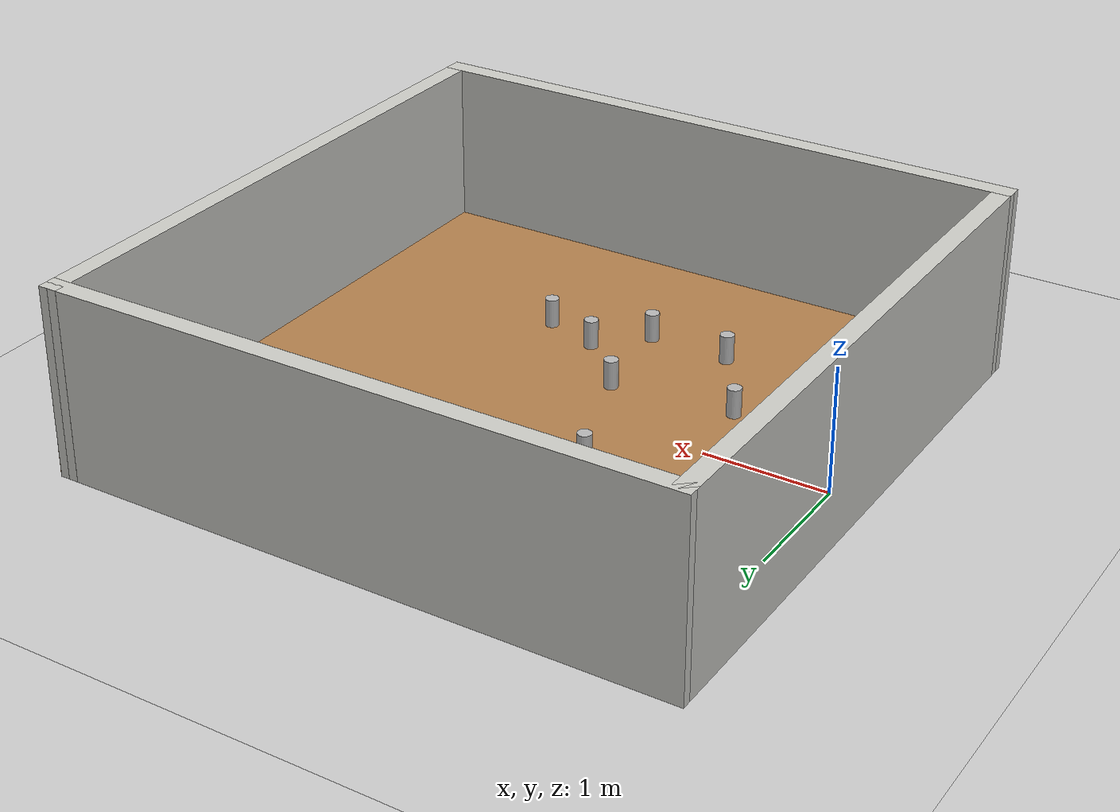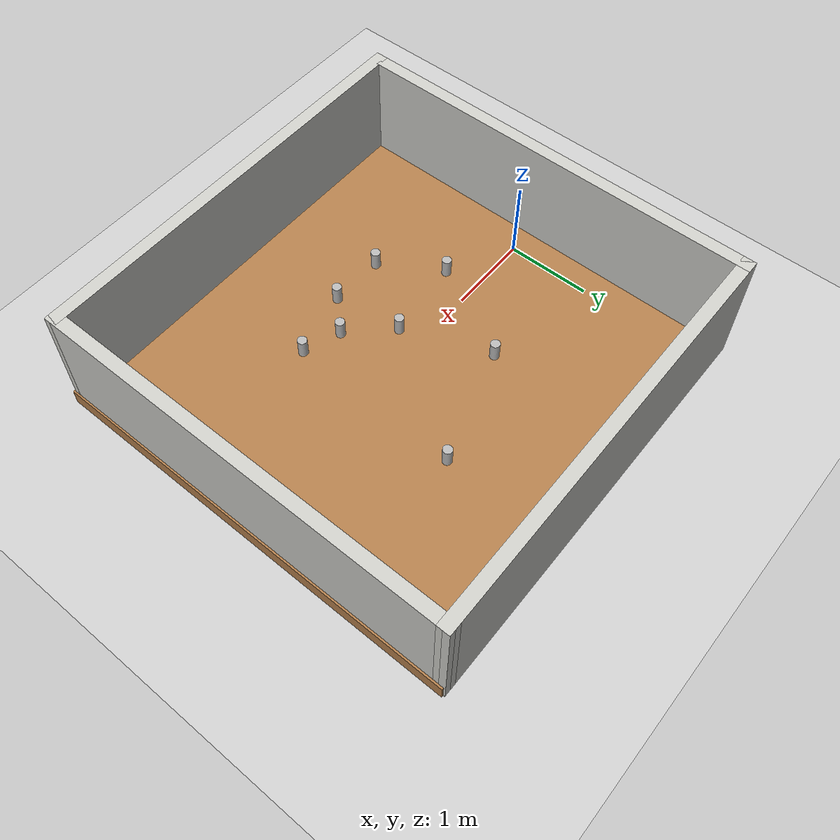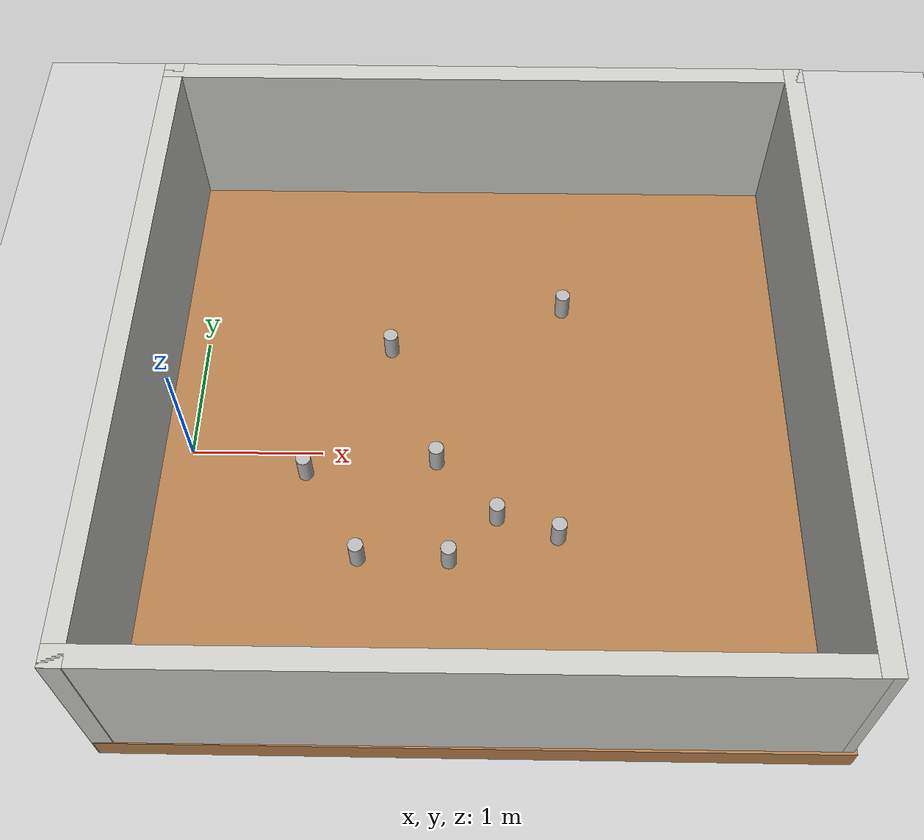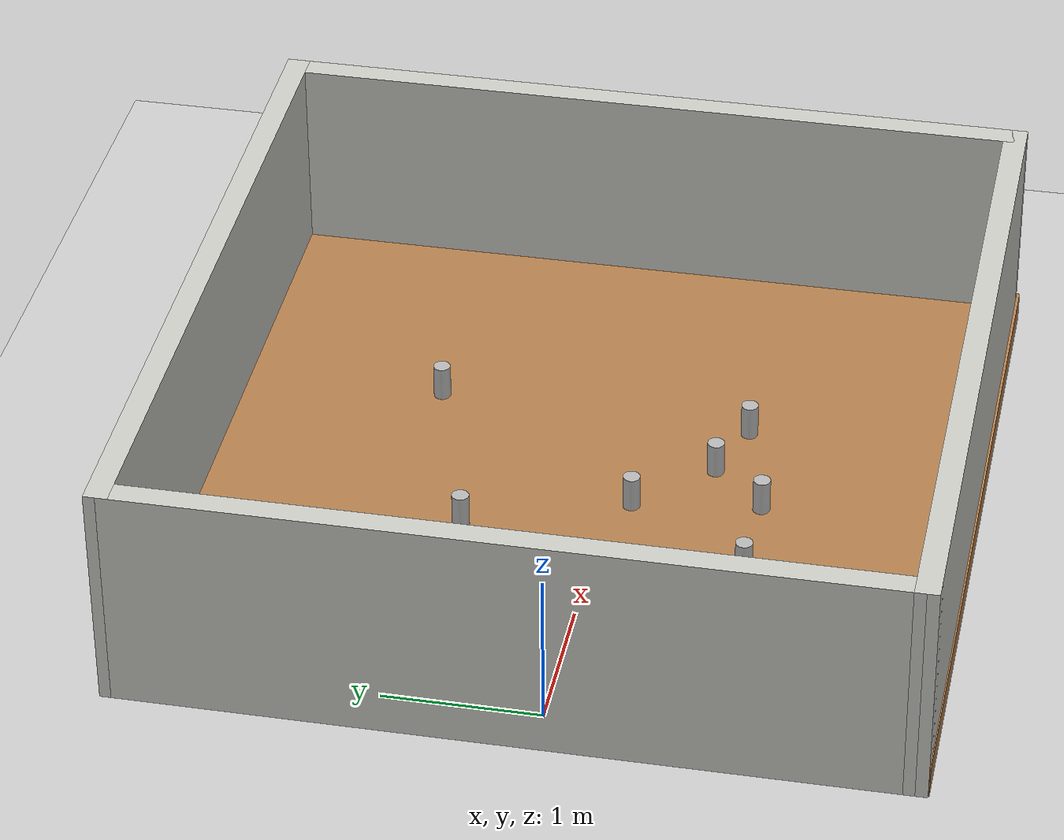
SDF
<sdf version="1.6">
 <world name="default">
  <light name="sun" type="directional">
   <pose>0 0 10 0 -0 0</pose>
   <diffuse>0.8 0.8 0.8 1</diffuse>
   <specular>0.1 0.1 0.1 1</specular>
   <attenuation>
    <range>1000</range>
    <constant>0.9</constant>
    <linear>0.01</linear>
    <quadratic>0.001</quadratic>
   </attenuation>
   <direction>-0.5 0.5 -1</direction>
  </light>
  <model name="ground_plane">
   <static>1</static>
   <link name="link">
    <collision name="collision">
     <geometry><plane><normal>0 0 1</normal><size>100 100</size></plane></geometry>
     <surface><friction><ode><mu>100</mu><mu2>50</mu2></ode></friction></surface>
    </collision>
    <visual name="visual">
     <cast_shadows>0</cast_shadows>
     <geometry><plane><normal>0 0 1</normal><size>100 100</size></plane></geometry>
     <material>
      <script><uri>file://media/materials/scripts/gazebo.material</uri><name>Gazebo/Grey</name></script>
     </material>
    </visual>
   </link>
  </model>
  <gravity>0 0 -9.8</gravity>
  <magnetic_field>6e-06 2.3e-05 -4.2e-05</magnetic_field>
  <atmosphere type="adiabatic"/>
  <physics name="default_physics" default="0" type="ode">
   <max_step_size>0.001</max_step_size>
   <real_time_factor>1</real_time_factor>
   <real_time_update_rate>1000</real_time_update_rate>
  </physics>
  <scene><ambient>0.4 0.4 0.4 1</ambient><background>0.7 0.7 0.7 1</background><shadows>1</shadows></scene>
  <spherical_coordinates>
   <surface_model>EARTH_WGS84</surface_model>
   <latitude_deg>0</latitude_deg>
   <longitude_deg>0</longitude_deg>
   <elevation>0</elevation>
   <heading_deg>0</heading_deg>
  </spherical_coordinates>
  <model name="room_5x5">
   <pose>2.19816 0.161722 0 0 -0 0</pose>
   <link name="Wall_0">
    <collision name="Wall_0_Collision">
     <geometry><box><size>4.99962 0.15 1.5</size></box></geometry>
     <pose>0 0 0.75 0 -0 0</pose>
    </collision>
    <visual name="Wall_0_Visual">
     <pose>0 0 0.75 0 -0 0</pose>
     <geometry><box><size>4.99962 0.15 1.5</size></box></geometry>
     <material>
      <script><uri>file://media/materials/scripts/gazebo.material</uri><name>Gazebo/CeilingTiled</name></script>
      <ambient>1 1 1 1</ambient>
     </material>
    </visual>
    <pose>-2.43578 -0.004075 0 0 0 -1.57059</pose>
   </link>
   <link name="Wall_1">
    <collision name="Wall_1_Collision">
     <geometry><box><size>5 0.15 1.5</size></box></geometry>
     <pose>0 0 0.75 0 -0 0</pose>
    </collision>
    <visual name="Wall_1_Visual">
     <pose>0 0 0.75 0 -0 0</pose>
     <geometry><box><size>5 0.15 1.5</size></box></geometry>
     <material>
      <script><uri>file://media/materials/scripts/gazebo.material</uri><name>Gazebo/CeilingTiled</name></script>
      <ambient>1 1 1 1</ambient>
     </material>
    </visual>
    <pose>-0.010283 -2.42207 0 0 -0 0.002887</pose>
   </link>
   <link name="Wall_2">
    <collision name="Wall_2_Collision">
     <geometry><box><size>5 0.15 1.5</size></box></geometry>
     <pose>0 0 0.75 0 -0 0</pose>
    </collision>
    <visual name="Wall_2_Visual">
     <pose>0 0 0.75 0 -0 0</pose>
     <geometry><box><size>5 0.15 1.5</size></box></geometry>
     <material>
      <script><uri>file://media/materials/scripts/gazebo.material</uri><name>Gazebo/CeilingTiled</name></script>
      <ambient>1 1 1 1</ambient>
     </material>
    </visual>
    <pose>2.41422 0.009925 0 0 -0 1.571</pose>
   </link>
   <link name="Wall_3">
    <collision name="Wall_3_Collision">
     <geometry><box><size>5 0.15 1.5</size></box></geometry>
     <pose>0 0 0.75 0 -0 0</pose>
    </collision>
    <visual name="Wall_3_Visual">
     <pose>0 0 0.75 0 -0 0</pose>
     <geometry><box><size>5 0.15 1.5</size></box></geometry>
     <material>
      <script><uri>file://media/materials/scripts/gazebo.material</uri><name>Gazebo/CeilingTiled</name></script>
      <ambient>1 1 1 1</ambient>
     </material>
    </visual>
    <pose>-0.011283 2.42793 0 0 0 -3.13871</pose>
   </link>
   <link name="Wall_5">
    <collision name="Wall_5_Collision">
     <geometry><box><size>5.01 5 0.2</size></box></geometry>
     <pose>0 0 0.1 0 -0 0</pose>
    </collision>
    <visual name="Wall_5_Visual">
     <pose>0 0 0.1 0 -0 0</pose>
     <geometry><box><size>5.01 5 0.2</size></box></geometry>
     <material>
      <script><uri>file://media/materials/scripts/gazebo.material</uri><name>Gazebo/Wood</name></script>
      <ambient>1 1 1 1</ambient>
     </material>
    </visual>
    <pose>0.006489 -0.010141 0 0 -0 3.14159</pose>
   </link>
   <static>1</static>
  </model>
  <model name="beer">
   <link name="link">
    <pose>0 0 0.115 0 -0 0</pose>
    <inertial>
     <mass>0.39</mass>
     <inertia><ixx>0.00058</ixx><ixy>0</ixy><ixz>0</ixz><iyy>0.00058</iyy><iyz>0</iyz><izz>0.00019</izz></inertia>
    </inertial>
    <collision name="collision">
     <geometry><cylinder><radius>0.055</radius><length>0.23</length></cylinder></geometry>
    </collision>
    <visual name="visual">
     <geometry><cylinder><radius>0.055</radius><length>0.23</length></cylinder></geometry>
     <material>
      <script>
       <uri>model://beer/materials/scripts</uri>
       <uri>model://beer/materials/textures</uri>
       <name>Beer/Diffuse</name>
      </script>
     </material>
    </visual>
   </link>
   <pose>1.34738 -0.989575 0.199995 6.2e-05 5.5e-05 0.000357</pose>
  </model>
  <model name="beer_clone">
   <link name="link">
    <pose>0 0 0.115 0 -0 0</pose>
    <inertial>
     <mass>0.39</mass>
     <inertia><ixx>0.00058</ixx><ixy>0</ixy><ixz>0</ixz><iyy>0.00058</iyy><iyz>0</iyz><izz>0.00019</izz></inertia>
    </inertial>
    <collision name="collision">
     <geometry><cylinder><radius>0.055</radius><length>0.23</length></cylinder></geometry>
    </collision>
    <visual name="visual">
     <geometry><cylinder><radius>0.055</radius><length>0.23</length></cylinder></geometry>
     <material>
      <script>
       <uri>model://beer/materials/scripts</uri>
       <uri>model://beer/materials/textures</uri>
       <name>Beer/Diffuse</name>
      </script>
     </material>
    </visual>
   </link>
   <pose>0.919685 -0.296619 0.199991 -5e-06 -1.4e-05 0.000355</pose>
  </model>
  <model name="beer_clone_0">
   <link name="link">
    <pose>0 0 0.115 0 -0 0</pose>
    <inertial>
     <mass>0.39</mass>
     <inertia><ixx>0.00058</ixx><ixy>0</ixy><ixz>0</ixz><iyy>0.00058</iyy><iyz>0</iyz><izz>0.00019</izz></inertia>
    </inertial>
    <collision name="collision">
     <geometry><cylinder><radius>0.055</radius><length>0.23</length></cylinder></geometry>
    </collision>
    <visual name="visual">
     <geometry><cylinder><radius>0.055</radius><length>0.23</length></cylinder></geometry>
     <material>
      <script>
       <uri>model://beer/materials/scripts</uri>
       <uri>model://beer/materials/textures</uri>
       <name>Beer/Diffuse</name>
      </script>
     </material>
    </visual>
   </link>
   <pose>1.49854 0.823135 0.199991 1.6e-05 1.3e-05 0.000329</pose>
  </model>
  <model name="beer_clone_1">
   <link name="link">
    <pose>0 0 0.115 0 -0 0</pose>
    <inertial>
     <mass>0.39</mass>
     <inertia><ixx>0.00058</ixx><ixy>0</ixy><ixz>0</ixz><iyy>0.00058</iyy><iyz>0</iyz><izz>0.00019</izz></inertia>
    </inertial>
    <collision name="collision">
     <geometry><cylinder><radius>0.055</radius><length>0.23</length></cylinder></geometry>
    </collision>
    <visual name="visual">
     <geometry><cylinder><radius>0.055</radius><length>0.23</length></cylinder></geometry>
     <material>
      <script>
       <uri>model://beer/materials/scripts</uri>
       <uri>model://beer/materials/textures</uri>
       <name>Beer/Diffuse</name>
      </script>
     </material>
    </visual>
   </link>
   <pose>1.88663 -0.191073 0.200001 -9e-06 -7e-06 0.000247</pose>
  </model>
  <model name="beer_clone_2">
   <link name="link">
    <pose>0 0 0.115 0 -0 0</pose>
    <inertial>
     <mass>0.39</mass>
     <inertia><ixx>0.00058</ixx><ixy>0</ixy><ixz>0</ixz><iyy>0.00058</iyy><iyz>0</iyz><izz>0.00019</izz></inertia>
    </inertial>
    <collision name="collision">
     <geometry><cylinder><radius>0.055</radius><length>0.23</length></cylinder></geometry>
    </collision>
    <visual name="visual">
     <geometry><cylinder><radius>0.055</radius><length>0.23</length></cylinder></geometry>
     <material>
      <script>
       <uri>model://beer/materials/scripts</uri>
       <uri>model://beer/materials/textures</uri>
       <name>Beer/Diffuse</name>
      </script>
     </material>
    </visual>
   </link>
   <pose>1.99999 -1 0.200001 1.1e-05 6e-06 0.000221</pose>
  </model>
  <model name="beer_clone_3">
   <link name="link">
    <pose>0 0 0.115 0 -0 0</pose>
    <inertial>
     <mass>0.39</mass>
     <inertia><ixx>0.00058</ixx><ixy>0</ixy><ixz>0</ixz><iyy>0.00058</iyy><iyz>0</iyz><izz>0.00019</izz></inertia>
    </inertial>
    <collision name="collision">
     <geometry><cylinder><radius>0.055</radius><length>0.23</length></cylinder></geometry>
    </collision>
    <visual name="visual">
     <geometry><cylinder><radius>0.055</radius><length>0.23</length></cylinder></geometry>
     <material>
      <script>
       <uri>model://beer/materials/scripts</uri>
       <uri>model://beer/materials/textures</uri>
       <name>Beer/Diffuse</name>
      </script>
     </material>
    </visual>
   </link>
   <pose>2.33789 -0.654418 0.200003 4.1e-05 3.8e-05 9e-05</pose>
  </model>
  <model name="beer_clone_4">
   <link name="link">
    <pose>0 0 0.115 0 -0 0</pose>
    <inertial>
     <mass>0.39</mass>
     <inertia><ixx>0.00058</ixx><ixy>0</ixy><ixz>0</ixz><iyy>0.00058</iyy><iyz>0</iyz><izz>0.00019</izz></inertia>
    </inertial>
    <collision name="collision">
     <geometry><cylinder><radius>0.055</radius><length>0.23</length></cylinder></geometry>
    </collision>
    <visual name="visual">
     <geometry><cylinder><radius>0.055</radius><length>0.23</length></cylinder></geometry>
     <material>
      <script>
       <uri>model://beer/materials/scripts</uri>
       <uri>model://beer/materials/textures</uri>
       <name>Beer/Diffuse</name>
      </script>
     </material>
    </visual>
   </link>
   <pose>2.78022 -0.802644 0.199993 3.2e-05 3e-05 0.000113</pose>
  </model>
  <model name="beer_clone_5">
   <link name="link">
    <pose>0 0 0.115 0 -0 0</pose>
    <inertial>
     <mass>0.39</mass>
     <inertia><ixx>0.00058</ixx><ixy>0</ixy><ixz>0</ixz><iyy>0.00058</iyy><iyz>0</iyz><izz>0.00019</izz></inertia>
    </inertial>
    <collision name="collision">
     <geometry><cylinder><radius>0.055</radius><length>0.23</length></cylinder></geometry>
    </collision>
    <visual name="visual">
     <geometry><cylinder><radius>0.055</radius><length>0.23</length></cylinder></geometry>
     <material>
      <script>
       <uri>model://beer/materials/scripts</uri>
       <uri>model://beer/materials/textures</uri>
       <name>Beer/Diffuse</name>
      </script>
     </material>
    </visual>
   </link>
   <pose>2.84174 1.23248 0.199992 1.1e-05 2.2e-05 0.000199</pose>
  </model>
 </world>
</sdf>
